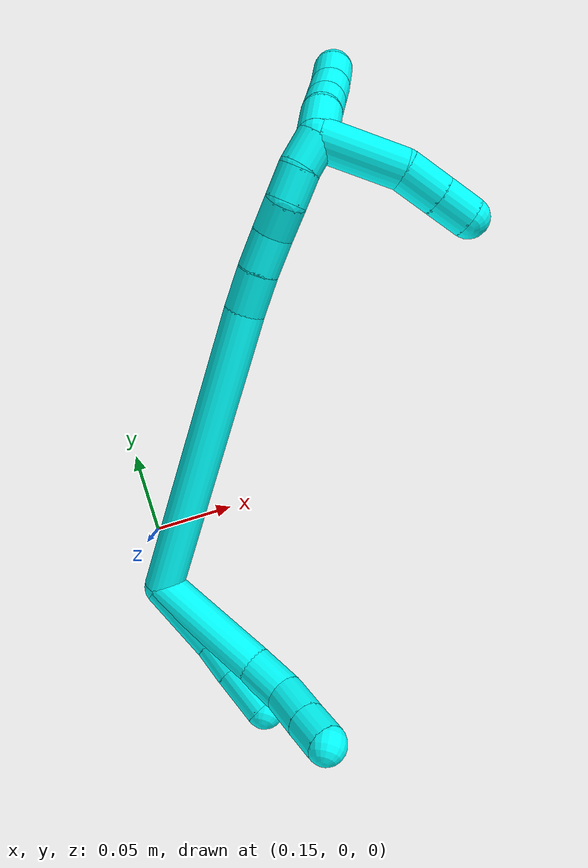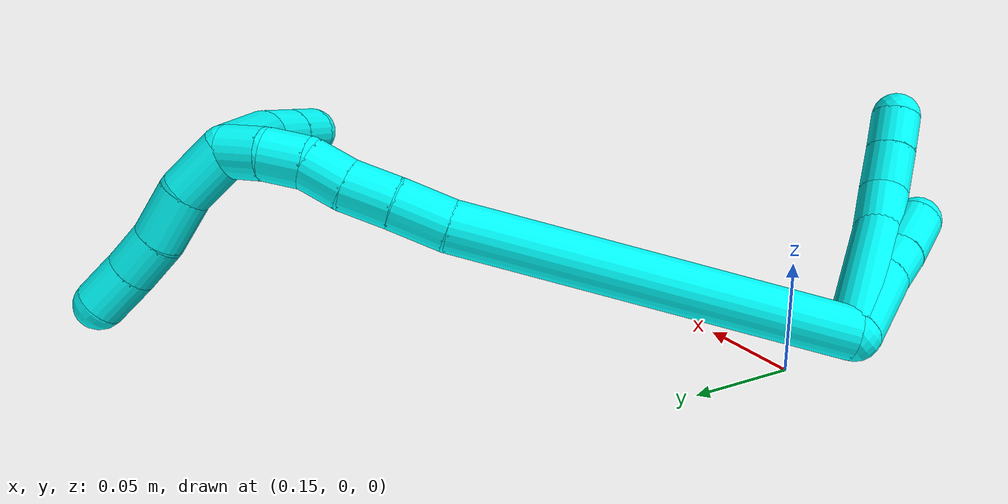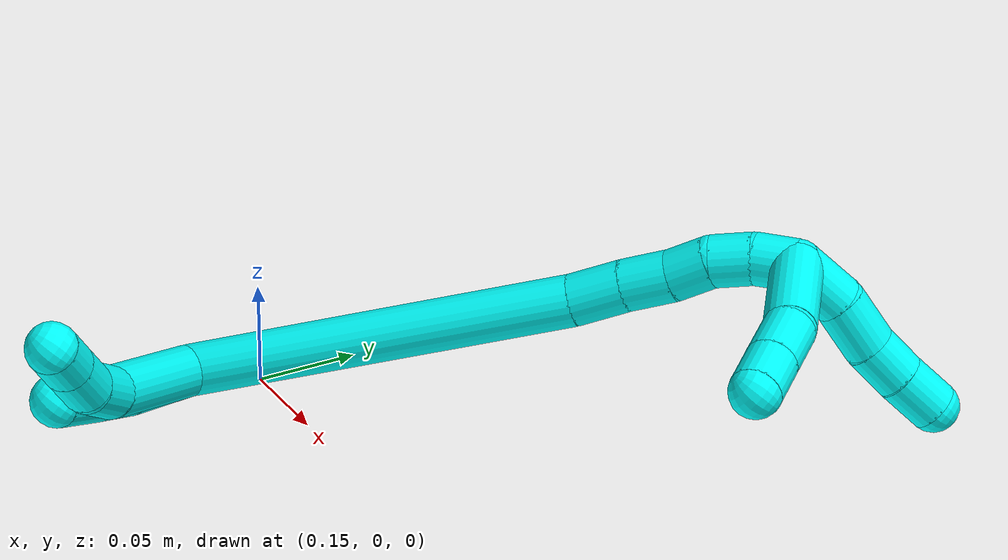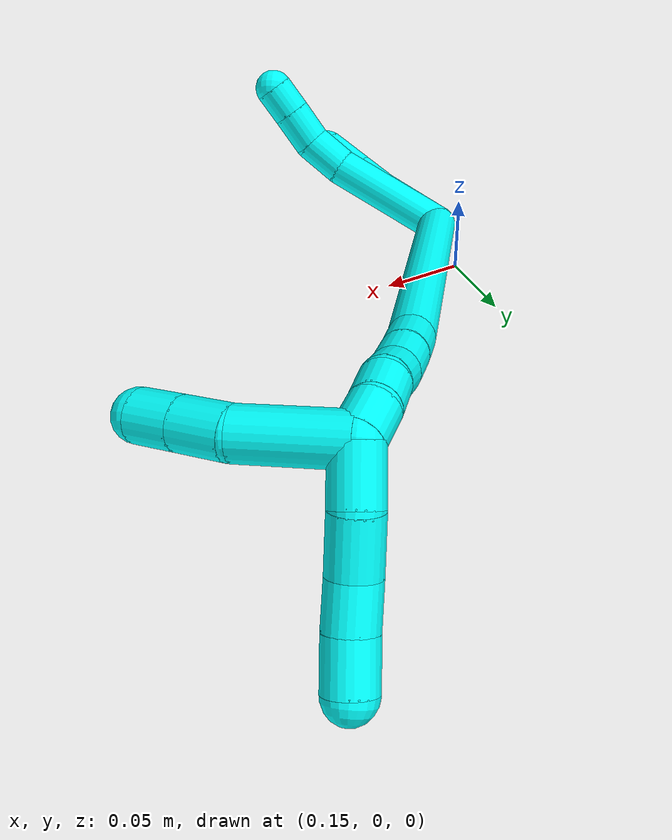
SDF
<sdf version="1.7">
 <world name="default">
  <model name="3">
   <static>0</static>
   <link name="3">
    <collision name="collision-cylinder-e_1_2_8">
     <pose>-0.028353 0.019763 -0.018367 -2.3196 -0.810215 1.55463</pose>
     <geometry><cylinder><radius>0.0125</radius><length>0.078276</length></cylinder></geometry>
     <surface>
      <friction><ode><mu>1.16</mu><mu2>1.16</mu2><slip1>0</slip1><slip2>0</slip2></ode></friction>
      <contact><ode><kp>1e+06</kp><kd>1</kd><max_vel>0</max_vel><min_depth>0.001</min_depth></ode></contact>
     </surface>
    </collision>
    <visual name="visual-cylinder-e_1_2_8">
     <pose>-0.028353 0.019763 -0.018367 -2.3196 -0.810215 1.55463</pose>
     <geometry><cylinder><radius>0.0125</radius><length>0.078276</length></cylinder></geometry>
     <material><ambient>0.003922 1 0.996078 1</ambient></material>
    </visual>
    <collision name="collision-cylinder-e_2_8_9">
     <pose>-0.064 0.048033 -0.044082 -2.28321 -0.57551 1.14814</pose>
     <geometry><cylinder><radius>0.0125</radius><length>0.026803</length></cylinder></geometry>
     <surface>
      <friction><ode><mu>1.16</mu><mu2>1.16</mu2><slip1>0</slip1><slip2>0</slip2></ode></friction>
      <contact><ode><kp>1e+06</kp><kd>1</kd><max_vel>0</max_vel><min_depth>0.001</min_depth></ode></contact>
     </surface>
    </collision>
    <visual name="visual-cylinder-e_2_8_9">
     <pose>-0.064 0.048033 -0.044082 -2.28321 -0.57551 1.14814</pose>
     <geometry><cylinder><radius>0.0125</radius><length>0.026803</length></cylinder></geometry>
     <material><ambient>0.003922 1 0.996078 1</ambient></material>
    </visual>
    <collision name="collision-cylinder-e_3_9_10">
     <pose>-0.074614 0.065064 -0.059682 -2.33996 -0.272894 0.62667</pose>
     <geometry><cylinder><radius>0.0125</radius><length>0.024636</length></cylinder></geometry>
     <surface>
      <friction><ode><mu>1.16</mu><mu2>1.16</mu2><slip1>0</slip1><slip2>0</slip2></ode></friction>
      <contact><ode><kp>1e+06</kp><kd>1</kd><max_vel>0</max_vel><min_depth>0.001</min_depth></ode></contact>
     </surface>
    </collision>
    <visual name="visual-cylinder-e_3_9_10">
     <pose>-0.074614 0.065064 -0.059682 -2.33996 -0.272894 0.62667</pose>
     <geometry><cylinder><radius>0.0125</radius><length>0.024636</length></cylinder></geometry>
     <material><ambient>0.003922 1 0.996078 1</ambient></material>
    </visual>
    <collision name="collision-cylinder-e_4_10_6">
     <pose>-0.080729 0.080715 -0.074585 -2.32168 -0.279177 0.625395</pose>
     <geometry><cylinder><radius>0.0125</radius><length>0.020285</length></cylinder></geometry>
     <surface>
      <friction><ode><mu>1.16</mu><mu2>1.16</mu2><slip1>0</slip1><slip2>0</slip2></ode></friction>
      <contact><ode><kp>1e+06</kp><kd>1</kd><max_vel>0</max_vel><min_depth>0.001</min_depth></ode></contact>
     </surface>
    </collision>
    <visual name="visual-cylinder-e_4_10_6">
     <pose>-0.080729 0.080715 -0.074585 -2.32168 -0.279177 0.625395</pose>
     <geometry><cylinder><radius>0.0125</radius><length>0.020285</length></cylinder></geometry>
     <material><ambient>0.003922 1 0.996078 1</ambient></material>
    </visual>
    <collision name="collision-cylinder-e_1_2_11">
     <pose>-0.018856 0.008679 -0.012509 -2.53502 -0.891539 1.98197</pose>
     <geometry><cylinder><radius>0.0125</radius><length>0.048471</length></cylinder></geometry>
     <surface>
      <friction><ode><mu>1.16</mu><mu2>1.16</mu2><slip1>0</slip1><slip2>0</slip2></ode></friction>
      <contact><ode><kp>1e+06</kp><kd>1</kd><max_vel>0</max_vel><min_depth>0.001</min_depth></ode></contact>
     </surface>
    </collision>
    <visual name="visual-cylinder-e_1_2_11">
     <pose>-0.018856 0.008679 -0.012509 -2.53502 -0.891539 1.98197</pose>
     <geometry><cylinder><radius>0.0125</radius><length>0.048471</length></cylinder></geometry>
     <material><ambient>0.003922 1 0.996078 1</ambient></material>
    </visual>
    <collision name="collision-cylinder-e_2_11_12">
     <pose>-0.045662 0.02083 -0.03154 -2.65237 -0.822004 2.10133</pose>
     <geometry><cylinder><radius>0.0125</radius><length>0.021706</length></cylinder></geometry>
     <surface>
      <friction><ode><mu>1.16</mu><mu2>1.16</mu2><slip1>0</slip1><slip2>0</slip2></ode></friction>
      <contact><ode><kp>1e+06</kp><kd>1</kd><max_vel>0</max_vel><min_depth>0.001</min_depth></ode></contact>
     </surface>
    </collision>
    <visual name="visual-cylinder-e_2_11_12">
     <pose>-0.045662 0.02083 -0.03154 -2.65237 -0.822004 2.10133</pose>
     <geometry><cylinder><radius>0.0125</radius><length>0.021706</length></cylinder></geometry>
     <material><ambient>0.003922 1 0.996078 1</ambient></material>
    </visual>
    <collision name="collision-cylinder-e_3_12_5">
     <pose>-0.064212 0.029974 -0.046883 -2.57027 -0.790719 1.91512</pose>
     <geometry><cylinder><radius>0.0125</radius><length>0.029823</length></cylinder></geometry>
     <surface>
      <friction><ode><mu>1.16</mu><mu2>1.16</mu2><slip1>0</slip1><slip2>0</slip2></ode></friction>
      <contact><ode><kp>1e+06</kp><kd>1</kd><max_vel>0</max_vel><min_depth>0.001</min_depth></ode></contact>
     </surface>
    </collision>
    <visual name="visual-cylinder-e_3_12_5">
     <pose>-0.064212 0.029974 -0.046883 -2.57027 -0.790719 1.91512</pose>
     <geometry><cylinder><radius>0.0125</radius><length>0.029823</length></cylinder></geometry>
     <material><ambient>0.003922 1 0.996078 1</ambient></material>
    </visual>
    <collision name="collision-cylinder-e_1_2_13">
     <pose>0.03844 0.066454 0.055465 -0.875293 0.417926 -0.197801</pose>
     <geometry><cylinder><radius>0.0125</radius><length>0.189422</length></cylinder></geometry>
     <surface>
      <friction><ode><mu>1.16</mu><mu2>1.16</mu2><slip1>0</slip1><slip2>0</slip2></ode></friction>
      <contact><ode><kp>1e+06</kp><kd>1</kd><max_vel>0</max_vel><min_depth>0.001</min_depth></ode></contact>
     </surface>
    </collision>
    <visual name="visual-cylinder-e_1_2_13">
     <pose>0.03844 0.066454 0.055465 -0.875293 0.417926 -0.197801</pose>
     <geometry><cylinder><radius>0.0125</radius><length>0.189422</length></cylinder></geometry>
     <material><ambient>0.003922 1 0.996078 1</ambient></material>
    </visual>
    <collision name="collision-cylinder-e_2_13_14">
     <pose>0.082206 0.143145 0.117242 -1.01824 0.416894 -0.235054</pose>
     <geometry><cylinder><radius>0.0125</radius><length>0.026306</length></cylinder></geometry>
     <surface>
      <friction><ode><mu>1.16</mu><mu2>1.16</mu2><slip1>0</slip1><slip2>0</slip2></ode></friction>
      <contact><ode><kp>1e+06</kp><kd>1</kd><max_vel>0</max_vel><min_depth>0.001</min_depth></ode></contact>
     </surface>
    </collision>
    <visual name="visual-cylinder-e_2_13_14">
     <pose>0.082206 0.143145 0.117242 -1.01824 0.416894 -0.235054</pose>
     <geometry><cylinder><radius>0.0125</radius><length>0.026306</length></cylinder></geometry>
     <material><ambient>0.003922 1 0.996078 1</ambient></material>
    </visual>
    <collision name="collision-cylinder-e_3_14_15">
     <pose>0.091638 0.162591 0.129687 -0.983302 0.355396 -0.191757</pose>
     <geometry><cylinder><radius>0.0125</radius><length>0.023604</length></cylinder></geometry>
     <surface>
      <friction><ode><mu>1.16</mu><mu2>1.16</mu2><slip1>0</slip1><slip2>0</slip2></ode></friction>
      <contact><ode><kp>1e+06</kp><kd>1</kd><max_vel>0</max_vel><min_depth>0.001</min_depth></ode></contact>
     </surface>
    </collision>
    <visual name="visual-cylinder-e_3_14_15">
     <pose>0.091638 0.162591 0.129687 -0.983302 0.355396 -0.191757</pose>
     <geometry><cylinder><radius>0.0125</radius><length>0.023604</length></cylinder></geometry>
     <material><ambient>0.003922 1 0.996078 1</ambient></material>
    </visual>
    <collision name="collision-cylinder-e_4_15_16">
     <pose>0.099517 0.180448 0.139683 -1.1506 0.379011 -0.247491</pose>
     <geometry><cylinder><radius>0.0125</radius><length>0.02039</length></cylinder></geometry>
     <surface>
      <friction><ode><mu>1.16</mu><mu2>1.16</mu2><slip1>0</slip1><slip2>0</slip2></ode></friction>
      <contact><ode><kp>1e+06</kp><kd>1</kd><max_vel>0</max_vel><min_depth>0.001</min_depth></ode></contact>
     </surface>
    </collision>
    <visual name="visual-cylinder-e_4_15_16">
     <pose>0.099517 0.180448 0.139683 -1.1506 0.379011 -0.247491</pose>
     <geometry><cylinder><radius>0.0125</radius><length>0.02039</length></cylinder></geometry>
     <material><ambient>0.003922 1 0.996078 1</ambient></material>
    </visual>
    <collision name="collision-cylinder-e_5_16_17">
     <pose>0.106257 0.196175 0.150026 -0.829624 0.299948 -0.13289</pose>
     <geometry><cylinder><radius>0.0125</radius><length>0.020089</length></cylinder></geometry>
     <surface>
      <friction><ode><mu>1.16</mu><mu2>1.16</mu2><slip1>0</slip1><slip2>0</slip2></ode></friction>
      <contact><ode><kp>1e+06</kp><kd>1</kd><max_vel>0</max_vel><min_depth>0.001</min_depth></ode></contact>
     </surface>
    </collision>
    <visual name="visual-cylinder-e_5_16_17">
     <pose>0.106257 0.196175 0.150026 -0.829624 0.299948 -0.13289</pose>
     <geometry><cylinder><radius>0.0125</radius><length>0.020089</length></cylinder></geometry>
     <material><ambient>0.003922 1 0.996078 1</ambient></material>
    </visual>
    <collision name="collision-cylinder-e_6_17_1">
     <pose>0.110327 0.209841 0.164074 -0.71612 0.109409 -0.040975</pose>
     <geometry><cylinder><radius>0.0125</radius><length>0.020189</length></cylinder></geometry>
     <surface>
      <friction><ode><mu>1.16</mu><mu2>1.16</mu2><slip1>0</slip1><slip2>0</slip2></ode></friction>
      <contact><ode><kp>1e+06</kp><kd>1</kd><max_vel>0</max_vel><min_depth>0.001</min_depth></ode></contact>
     </surface>
    </collision>
    <visual name="visual-cylinder-e_6_17_1">
     <pose>0.110327 0.209841 0.164074 -0.71612 0.109409 -0.040975</pose>
     <geometry><cylinder><radius>0.0125</radius><length>0.020189</length></cylinder></geometry>
     <material><ambient>0.003922 1 0.996078 1</ambient></material>
    </visual>
    <collision name="collision-cylinder-e_1_1_18">
     <pose>0.087901 0.227939 0.171966 -1.54282 -1.11564 1.09066</pose>
     <geometry><cylinder><radius>0.0125</radius><length>0.05239</length></cylinder></geometry>
     <surface>
      <friction><ode><mu>1.16</mu><mu2>1.16</mu2><slip1>0</slip1><slip2>0</slip2></ode></friction>
      <contact><ode><kp>1e+06</kp><kd>1</kd><max_vel>0</max_vel><min_depth>0.001</min_depth></ode></contact>
     </surface>
    </collision>
    <visual name="visual-cylinder-e_1_1_18">
     <pose>0.087901 0.227939 0.171966 -1.54282 -1.11564 1.09066</pose>
     <geometry><cylinder><radius>0.0125</radius><length>0.05239</length></cylinder></geometry>
     <material><ambient>0.003922 1 0.996078 1</ambient></material>
    </visual>
    <collision name="collision-cylinder-e_2_18_19">
     <pose>0.052019 0.242272 0.170663 -2.09316 -1.31309 1.8542</pose>
     <geometry><cylinder><radius>0.0125</radius><length>0.025551</length></cylinder></geometry>
     <surface>
      <friction><ode><mu>1.16</mu><mu2>1.16</mu2><slip1>0</slip1><slip2>0</slip2></ode></friction>
      <contact><ode><kp>1e+06</kp><kd>1</kd><max_vel>0</max_vel><min_depth>0.001</min_depth></ode></contact>
     </surface>
    </collision>
    <visual name="visual-cylinder-e_2_18_19">
     <pose>0.052019 0.242272 0.170663 -2.09316 -1.31309 1.8542</pose>
     <geometry><cylinder><radius>0.0125</radius><length>0.025551</length></cylinder></geometry>
     <material><ambient>0.003922 1 0.996078 1</ambient></material>
    </visual>
    <collision name="collision-cylinder-e_3_19_4">
     <pose>0.028994 0.247521 0.167675 -2.08277 -1.31556 1.84516</pose>
     <geometry><cylinder><radius>0.0125</radius><length>0.022059</length></cylinder></geometry>
     <surface>
      <friction><ode><mu>1.16</mu><mu2>1.16</mu2><slip1>0</slip1><slip2>0</slip2></ode></friction>
      <contact><ode><kp>1e+06</kp><kd>1</kd><max_vel>0</max_vel><min_depth>0.001</min_depth></ode></contact>
     </surface>
    </collision>
    <visual name="visual-cylinder-e_3_19_4">
     <pose>0.028994 0.247521 0.167675 -2.08277 -1.31556 1.84516</pose>
     <geometry><cylinder><radius>0.0125</radius><length>0.022059</length></cylinder></geometry>
     <material><ambient>0.003922 1 0.996078 1</ambient></material>
    </visual>
    <collision name="collision-cylinder-e_1_1_20">
     <pose>0.111754 0.215039 0.185404 0.100564 0.023453 0.00118</pose>
     <geometry><cylinder><radius>0.0125</radius><length>0.027669</length></cylinder></geometry>
     <surface>
      <friction><ode><mu>1.16</mu><mu2>1.16</mu2><slip1>0</slip1><slip2>0</slip2></ode></friction>
      <contact><ode><kp>1e+06</kp><kd>1</kd><max_vel>0</max_vel><min_depth>0.001</min_depth></ode></contact>
     </surface>
    </collision>
    <visual name="visual-cylinder-e_1_1_20">
     <pose>0.111754 0.215039 0.185404 0.100564 0.023453 0.00118</pose>
     <geometry><cylinder><radius>0.0125</radius><length>0.027669</length></cylinder></geometry>
     <material><ambient>0.003922 1 0.996078 1</ambient></material>
    </visual>
    <collision name="collision-cylinder-e_2_20_21">
     <pose>0.110101 0.210079 0.212135 0.268712 -0.145969 -0.019765</pose>
     <geometry><cylinder><radius>0.0125</radius><length>0.027194</length></cylinder></geometry>
     <surface>
      <friction><ode><mu>1.16</mu><mu2>1.16</mu2><slip1>0</slip1><slip2>0</slip2></ode></friction>
      <contact><ode><kp>1e+06</kp><kd>1</kd><max_vel>0</max_vel><min_depth>0.001</min_depth></ode></contact>
     </surface>
    </collision>
    <visual name="visual-cylinder-e_2_20_21">
     <pose>0.110101 0.210079 0.212135 0.268712 -0.145969 -0.019765</pose>
     <geometry><cylinder><radius>0.0125</radius><length>0.027194</length></cylinder></geometry>
     <material><ambient>0.003922 1 0.996078 1</ambient></material>
    </visual>
    <collision name="collision-cylinder-e_3_21_22">
     <pose>0.107443 0.205197 0.235872 0.121121 -0.062627 -0.003799</pose>
     <geometry><cylinder><radius>0.0125</radius><length>0.021737</length></cylinder></geometry>
     <surface>
      <friction><ode><mu>1.16</mu><mu2>1.16</mu2><slip1>0</slip1><slip2>0</slip2></ode></friction>
      <contact><ode><kp>1e+06</kp><kd>1</kd><max_vel>0</max_vel><min_depth>0.001</min_depth></ode></contact>
     </surface>
    </collision>
    <visual name="visual-cylinder-e_3_21_22">
     <pose>0.107443 0.205197 0.235872 0.121121 -0.062627 -0.003799</pose>
     <geometry><cylinder><radius>0.0125</radius><length>0.021737</length></cylinder></geometry>
     <material><ambient>0.003922 1 0.996078 1</ambient></material>
    </visual>
    <collision name="collision-cylinder-e_4_22_3">
     <pose>0.106877 0.202591 0.258267 0.11094 0.009775 0.000543</pose>
     <geometry><cylinder><radius>0.0125</radius><length>0.023401</length></cylinder></geometry>
     <surface>
      <friction><ode><mu>1.16</mu><mu2>1.16</mu2><slip1>0</slip1><slip2>0</slip2></ode></friction>
      <contact><ode><kp>1e+06</kp><kd>1</kd><max_vel>0</max_vel><min_depth>0.001</min_depth></ode></contact>
     </surface>
    </collision>
    <visual name="visual-cylinder-e_4_22_3">
     <pose>0.106877 0.202591 0.258267 0.11094 0.009775 0.000543</pose>
     <geometry><cylinder><radius>0.0125</radius><length>0.023401</length></cylinder></geometry>
     <material><ambient>0.003922 1 0.996078 1</ambient></material>
    </visual>
    <collision name="collision-sphere-3">
     <pose>0.106991 0.201296 0.269895 0 -0 0</pose>
     <geometry><sphere><radius>0.0125</radius></sphere></geometry>
     <surface>
      <friction><ode><mu>1.16</mu><mu2>1.16</mu2><slip1>0</slip1><slip2>0</slip2></ode></friction>
      <contact><ode><kp>1e+06</kp><kd>1</kd><max_vel>0</max_vel><min_depth>0.001</min_depth></ode></contact>
     </surface>
    </collision>
    <visual name="visual-sphere-3">
     <pose>0.106991 0.201296 0.269895 0 -0 0</pose>
     <geometry><sphere><radius>0.0125</radius></sphere></geometry>
     <material><ambient>0.003922 1 0.996078 1</ambient></material>
    </visual>
    <collision name="collision-sphere-22">
     <pose>0.106763 0.203887 0.246639 0 -0 0</pose>
     <geometry><sphere><radius>0.0125</radius></sphere></geometry>
     <surface>
      <friction><ode><mu>1.16</mu><mu2>1.16</mu2><slip1>0</slip1><slip2>0</slip2></ode></friction>
      <contact><ode><kp>1e+06</kp><kd>1</kd><max_vel>0</max_vel><min_depth>0.001</min_depth></ode></contact>
     </surface>
    </collision>
    <visual name="visual-sphere-22">
     <pose>0.106763 0.203887 0.246639 0 -0 0</pose>
     <geometry><sphere><radius>0.0125</radius></sphere></geometry>
     <material><ambient>0.003922 1 0.996078 1</ambient></material>
    </visual>
    <collision name="collision-sphere-21">
     <pose>0.108123 0.206508 0.225104 0 -0 0</pose>
     <geometry><sphere><radius>0.0125</radius></sphere></geometry>
     <surface>
      <friction><ode><mu>1.16</mu><mu2>1.16</mu2><slip1>0</slip1><slip2>0</slip2></ode></friction>
      <contact><ode><kp>1e+06</kp><kd>1</kd><max_vel>0</max_vel><min_depth>0.001</min_depth></ode></contact>
     </surface>
    </collision>
    <visual name="visual-sphere-21">
     <pose>0.108123 0.206508 0.225104 0 -0 0</pose>
     <geometry><sphere><radius>0.0125</radius></sphere></geometry>
     <material><ambient>0.003922 1 0.996078 1</ambient></material>
    </visual>
    <collision name="collision-sphere-20">
     <pose>0.112078 0.213651 0.199165 0 -0 0</pose>
     <geometry><sphere><radius>0.0125</radius></sphere></geometry>
     <surface>
      <friction><ode><mu>1.16</mu><mu2>1.16</mu2><slip1>0</slip1><slip2>0</slip2></ode></friction>
      <contact><ode><kp>1e+06</kp><kd>1</kd><max_vel>0</max_vel><min_depth>0.001</min_depth></ode></contact>
     </surface>
    </collision>
    <visual name="visual-sphere-20">
     <pose>0.112078 0.213651 0.199165 0 -0 0</pose>
     <geometry><sphere><radius>0.0125</radius></sphere></geometry>
     <material><ambient>0.003922 1 0.996078 1</ambient></material>
    </visual>
    <collision name="collision-sphere-4">
     <pose>0.018322 0.249949 0.16631 0 -0 0</pose>
     <geometry><sphere><radius>0.0125</radius></sphere></geometry>
     <surface>
      <friction><ode><mu>1.16</mu><mu2>1.16</mu2><slip1>0</slip1><slip2>0</slip2></ode></friction>
      <contact><ode><kp>1e+06</kp><kd>1</kd><max_vel>0</max_vel><min_depth>0.001</min_depth></ode></contact>
     </surface>
    </collision>
    <visual name="visual-sphere-4">
     <pose>0.018322 0.249949 0.16631 0 -0 0</pose>
     <geometry><sphere><radius>0.0125</radius></sphere></geometry>
     <material><ambient>0.003922 1 0.996078 1</ambient></material>
    </visual>
    <collision name="collision-sphere-11">
     <pose>-0.037712 0.017358 -0.025018 0 -0 0</pose>
     <geometry><sphere><radius>0.0125</radius></sphere></geometry>
     <surface>
      <friction><ode><mu>1.16</mu><mu2>1.16</mu2><slip1>0</slip1><slip2>0</slip2></ode></friction>
      <contact><ode><kp>1e+06</kp><kd>1</kd><max_vel>0</max_vel><min_depth>0.001</min_depth></ode></contact>
     </surface>
    </collision>
    <visual name="visual-sphere-11">
     <pose>-0.037712 0.017358 -0.025018 0 -0 0</pose>
     <geometry><sphere><radius>0.0125</radius></sphere></geometry>
     <material><ambient>0.003922 1 0.996078 1</ambient></material>
    </visual>
    <collision name="collision-sphere-6">
     <pose>-0.083523 0.087843 -0.081237 0 -0 0</pose>
     <geometry><sphere><radius>0.0125</radius></sphere></geometry>
     <surface>
      <friction><ode><mu>1.16</mu><mu2>1.16</mu2><slip1>0</slip1><slip2>0</slip2></ode></friction>
      <contact><ode><kp>1e+06</kp><kd>1</kd><max_vel>0</max_vel><min_depth>0.001</min_depth></ode></contact>
     </surface>
    </collision>
    <visual name="visual-sphere-6">
     <pose>-0.083523 0.087843 -0.081237 0 -0 0</pose>
     <geometry><sphere><radius>0.0125</radius></sphere></geometry>
     <material><ambient>0.003922 1 0.996078 1</ambient></material>
    </visual>
    <collision name="collision-sphere-10">
     <pose>-0.077934 0.073587 -0.067932 0 -0 0</pose>
     <geometry><sphere><radius>0.0125</radius></sphere></geometry>
     <surface>
      <friction><ode><mu>1.16</mu><mu2>1.16</mu2><slip1>0</slip1><slip2>0</slip2></ode></friction>
      <contact><ode><kp>1e+06</kp><kd>1</kd><max_vel>0</max_vel><min_depth>0.001</min_depth></ode></contact>
     </surface>
    </collision>
    <visual name="visual-sphere-10">
     <pose>-0.077934 0.073587 -0.067932 0 -0 0</pose>
     <geometry><sphere><radius>0.0125</radius></sphere></geometry>
     <material><ambient>0.003922 1 0.996078 1</ambient></material>
    </visual>
    <collision name="collision-sphere-9">
     <pose>-0.071294 0.056542 -0.051431 0 -0 0</pose>
     <geometry><sphere><radius>0.0125</radius></sphere></geometry>
     <surface>
      <friction><ode><mu>1.16</mu><mu2>1.16</mu2><slip1>0</slip1><slip2>0</slip2></ode></friction>
      <contact><ode><kp>1e+06</kp><kd>1</kd><max_vel>0</max_vel><min_depth>0.001</min_depth></ode></contact>
     </surface>
    </collision>
    <visual name="visual-sphere-9">
     <pose>-0.071294 0.056542 -0.051431 0 -0 0</pose>
     <geometry><sphere><radius>0.0125</radius></sphere></geometry>
     <material><ambient>0.003922 1 0.996078 1</ambient></material>
    </visual>
    <collision name="collision-sphere-2">
     <geometry><sphere><radius>0.0125</radius></sphere></geometry>
     <surface>
      <friction><ode><mu>1.16</mu><mu2>1.16</mu2><slip1>0</slip1><slip2>0</slip2></ode></friction>
      <contact><ode><kp>1e+06</kp><kd>1</kd><max_vel>0</max_vel><min_depth>0.001</min_depth></ode></contact>
     </surface>
    </collision>
    <visual name="visual-sphere-2">
     <geometry><sphere><radius>0.0125</radius></sphere></geometry>
     <material><ambient>0.003922 1 0.996078 1</ambient></material>
    </visual>
    <collision name="collision-sphere-19">
     <pose>0.039666 0.245093 0.169039 0 -0 0</pose>
     <geometry><sphere><radius>0.0125</radius></sphere></geometry>
     <surface>
      <friction><ode><mu>1.16</mu><mu2>1.16</mu2><slip1>0</slip1><slip2>0</slip2></ode></friction>
      <contact><ode><kp>1e+06</kp><kd>1</kd><max_vel>0</max_vel><min_depth>0.001</min_depth></ode></contact>
     </surface>
    </collision>
    <visual name="visual-sphere-19">
     <pose>0.039666 0.245093 0.169039 0 -0 0</pose>
     <geometry><sphere><radius>0.0125</radius></sphere></geometry>
     <material><ambient>0.003922 1 0.996078 1</ambient></material>
    </visual>
    <collision name="collision-sphere-8">
     <pose>-0.056706 0.039525 -0.036733 0 -0 0</pose>
     <geometry><sphere><radius>0.0125</radius></sphere></geometry>
     <surface>
      <friction><ode><mu>1.16</mu><mu2>1.16</mu2><slip1>0</slip1><slip2>0</slip2></ode></friction>
      <contact><ode><kp>1e+06</kp><kd>1</kd><max_vel>0</max_vel><min_depth>0.001</min_depth></ode></contact>
     </surface>
    </collision>
    <visual name="visual-sphere-8">
     <pose>-0.056706 0.039525 -0.036733 0 -0 0</pose>
     <geometry><sphere><radius>0.0125</radius></sphere></geometry>
     <material><ambient>0.003922 1 0.996078 1</ambient></material>
    </visual>
    <collision name="collision-sphere-12">
     <pose>-0.053613 0.024303 -0.038061 0 -0 0</pose>
     <geometry><sphere><radius>0.0125</radius></sphere></geometry>
     <surface>
      <friction><ode><mu>1.16</mu><mu2>1.16</mu2><slip1>0</slip1><slip2>0</slip2></ode></friction>
      <contact><ode><kp>1e+06</kp><kd>1</kd><max_vel>0</max_vel><min_depth>0.001</min_depth></ode></contact>
     </surface>
    </collision>
    <visual name="visual-sphere-12">
     <pose>-0.053613 0.024303 -0.038061 0 -0 0</pose>
     <geometry><sphere><radius>0.0125</radius></sphere></geometry>
     <material><ambient>0.003922 1 0.996078 1</ambient></material>
    </visual>
    <collision name="collision-sphere-5">
     <pose>-0.074812 0.035645 -0.055705 0 -0 0</pose>
     <geometry><sphere><radius>0.0125</radius></sphere></geometry>
     <surface>
      <friction><ode><mu>1.16</mu><mu2>1.16</mu2><slip1>0</slip1><slip2>0</slip2></ode></friction>
      <contact><ode><kp>1e+06</kp><kd>1</kd><max_vel>0</max_vel><min_depth>0.001</min_depth></ode></contact>
     </surface>
    </collision>
    <visual name="visual-sphere-5">
     <pose>-0.074812 0.035645 -0.055705 0 -0 0</pose>
     <geometry><sphere><radius>0.0125</radius></sphere></geometry>
     <material><ambient>0.003922 1 0.996078 1</ambient></material>
    </visual>
    <collision name="collision-sphere-13">
     <pose>0.07688 0.132909 0.110929 0 -0 0</pose>
     <geometry><sphere><radius>0.0125</radius></sphere></geometry>
     <surface>
      <friction><ode><mu>1.16</mu><mu2>1.16</mu2><slip1>0</slip1><slip2>0</slip2></ode></friction>
      <contact><ode><kp>1e+06</kp><kd>1</kd><max_vel>0</max_vel><min_depth>0.001</min_depth></ode></contact>
     </surface>
    </collision>
    <visual name="visual-sphere-13">
     <pose>0.07688 0.132909 0.110929 0 -0 0</pose>
     <geometry><sphere><radius>0.0125</radius></sphere></geometry>
     <material><ambient>0.003922 1 0.996078 1</ambient></material>
    </visual>
    <collision name="collision-sphere-14">
     <pose>0.087532 0.153382 0.123554 0 -0 0</pose>
     <geometry><sphere><radius>0.0125</radius></sphere></geometry>
     <surface>
      <friction><ode><mu>1.16</mu><mu2>1.16</mu2><slip1>0</slip1><slip2>0</slip2></ode></friction>
      <contact><ode><kp>1e+06</kp><kd>1</kd><max_vel>0</max_vel><min_depth>0.001</min_depth></ode></contact>
     </surface>
    </collision>
    <visual name="visual-sphere-14">
     <pose>0.087532 0.153382 0.123554 0 -0 0</pose>
     <geometry><sphere><radius>0.0125</radius></sphere></geometry>
     <material><ambient>0.003922 1 0.996078 1</ambient></material>
    </visual>
    <collision name="collision-sphere-15">
     <pose>0.095745 0.171801 0.135819 0 -0 0</pose>
     <geometry><sphere><radius>0.0125</radius></sphere></geometry>
     <surface>
      <friction><ode><mu>1.16</mu><mu2>1.16</mu2><slip1>0</slip1><slip2>0</slip2></ode></friction>
      <contact><ode><kp>1e+06</kp><kd>1</kd><max_vel>0</max_vel><min_depth>0.001</min_depth></ode></contact>
     </surface>
    </collision>
    <visual name="visual-sphere-15">
     <pose>0.095745 0.171801 0.135819 0 -0 0</pose>
     <geometry><sphere><radius>0.0125</radius></sphere></geometry>
     <material><ambient>0.003922 1 0.996078 1</ambient></material>
    </visual>
    <collision name="collision-sphere-16">
     <pose>0.103289 0.189096 0.143547 0 -0 0</pose>
     <geometry><sphere><radius>0.0125</radius></sphere></geometry>
     <surface>
      <friction><ode><mu>1.16</mu><mu2>1.16</mu2><slip1>0</slip1><slip2>0</slip2></ode></friction>
      <contact><ode><kp>1e+06</kp><kd>1</kd><max_vel>0</max_vel><min_depth>0.001</min_depth></ode></contact>
     </surface>
    </collision>
    <visual name="visual-sphere-16">
     <pose>0.103289 0.189096 0.143547 0 -0 0</pose>
     <geometry><sphere><radius>0.0125</radius></sphere></geometry>
     <material><ambient>0.003922 1 0.996078 1</ambient></material>
    </visual>
    <collision name="collision-sphere-17">
     <pose>0.109225 0.203254 0.156505 0 -0 0</pose>
     <geometry><sphere><radius>0.0125</radius></sphere></geometry>
     <surface>
      <friction><ode><mu>1.16</mu><mu2>1.16</mu2><slip1>0</slip1><slip2>0</slip2></ode></friction>
      <contact><ode><kp>1e+06</kp><kd>1</kd><max_vel>0</max_vel><min_depth>0.001</min_depth></ode></contact>
     </surface>
    </collision>
    <visual name="visual-sphere-17">
     <pose>0.109225 0.203254 0.156505 0 -0 0</pose>
     <geometry><sphere><radius>0.0125</radius></sphere></geometry>
     <material><ambient>0.003922 1 0.996078 1</ambient></material>
    </visual>
    <collision name="collision-sphere-1">
     <pose>0.111429 0.216428 0.171644 0 -0 0</pose>
     <geometry><sphere><radius>0.0125</radius></sphere></geometry>
     <surface>
      <friction><ode><mu>1.16</mu><mu2>1.16</mu2><slip1>0</slip1><slip2>0</slip2></ode></friction>
      <contact><ode><kp>1e+06</kp><kd>1</kd><max_vel>0</max_vel><min_depth>0.001</min_depth></ode></contact>
     </surface>
    </collision>
    <visual name="visual-sphere-1">
     <pose>0.111429 0.216428 0.171644 0 -0 0</pose>
     <geometry><sphere><radius>0.0125</radius></sphere></geometry>
     <material><ambient>0.003922 1 0.996078 1</ambient></material>
    </visual>
    <collision name="collision-sphere-18">
     <pose>0.064373 0.23945 0.172288 0 -0 0</pose>
     <geometry><sphere><radius>0.0125</radius></sphere></geometry>
     <surface>
      <friction><ode><mu>1.16</mu><mu2>1.16</mu2><slip1>0</slip1><slip2>0</slip2></ode></friction>
      <contact><ode><kp>1e+06</kp><kd>1</kd><max_vel>0</max_vel><min_depth>0.001</min_depth></ode></contact>
     </surface>
    </collision>
    <visual name="visual-sphere-18">
     <pose>0.064373 0.23945 0.172288 0 -0 0</pose>
     <geometry><sphere><radius>0.0125</radius></sphere></geometry>
     <material><ambient>0.003922 1 0.996078 1</ambient></material>
    </visual>
    <inertial>
     <pose>0.032352 0.11246 0.075563 0 -0 0</pose>
     <mass>0.75</mass>
     <inertia>
      <ixx>0.000468</ixx>
      <ixy>0</ixy>
      <ixz>0</ixz>
      <iyy>0.000432</iyy>
      <iyz>0</iyz>
      <izz>-0.00061</izz>
     </inertia>
    </inertial>
   </link>
   <pose>0.144566 -0.035446 0.01185 2.34432 -0.418632 2.19328</pose>
  </model>
 </world>
</sdf>
